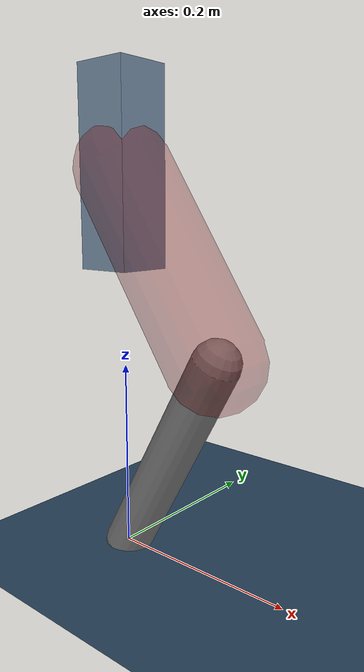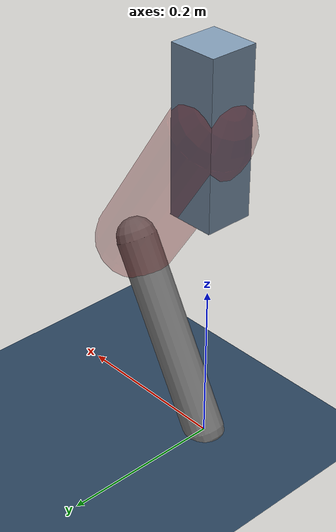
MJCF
<mujoco model="Hopper2D">
	<compiler inertiafromgeom="true" angle="radian" />
	<option timestep="0.001" integrator="implicit" cone="elliptic" solver="Newton" tolerance="1e-10" />

	<default>
		<geom contype="1" conaffinity="1" condim="3" friction="2 0.005 0.0001" solref="0.005 1" />
		<joint limited="true" damping="0.1" />
	</default>

	<asset>
		<texture name="skybox" type="skybox" builtin="gradient" rgb1=".4 .6 .8" rgb2="0 0 0" width="800" height="800" />
		<texture name="grid" type="2d" builtin="checker" rgb1=".1 .2 .3" rgb2=".2 .3 .4" width="300" height="300" mark="edge" markrgb=".2 .3 .4" />
		<material name="ground" texture="grid" texrepeat="1 1" texuniform="true" reflectance="0.1" />
		<material name="leg" rgba="0.5 0.6 0.7 1" />
	</asset>

	<worldbody>

		<geom name="floor" type="plane" size="5 5 0.25" material="ground" />

		<light directional="false" diffuse="0.8 0.8 0.8" specular="0.3 0.3 0.3" pos="0 0 2" dir="0 0 -1" />
		<light mode="targetbodycom" target="base" directional="false" diffuse="0.8 0.8 0.8" specular="0.3 0.3 0.3" pos="0 0 2" dir="0 0 -1" />

		<camera name="fixed" pos="0 -2 1" xyaxes="1 0 0 0 0 1" />
		<camera name="tracking" mode="trackcom" pos="0 -3 1" />

		<body name="root" pos="0 0 0.4028452395610031">
			<joint name="slide_x" type="slide" axis="1 0 0" range="-100 100" />
			<joint name="slide_z" type="slide" axis="0 0 1" range="0 10" />

			<body name="base" pos="0 0 0">
				<geom name="torso" type="box" size="0.03 0.03 0.1" mass="2.883" material="leg" />

				<body name="link1" pos="0 0 0" euler="0 0.987202807084249 0">
					<joint type="hinge" axis="0 -1 0" pos="0 0 0" name="hinge1" limited="true" range="-3.14 3.14" stiffness="0" damping="0.1" />
					<geom name="thigh" type="capsule" fromto="0 0 0 0.21863596095268 0 0" size="0.05" rgba="0.5 0 0 0.3" mass="0.7761899023817" />

					<body name="link2" pos="0.21863596095268 0 0" euler="0 1.0838421943114869 0">
						<joint type="hinge" axis="0 -1 0" pos="0 0 0" name="hinge2" limited="true" range="-3.14 3.14" stiffness="0" damping="0.1" />
						<geom name="shank" type="capsule" fromto="0 0 0 0.25117422930003025 0 0" size="0.025" mass="0.44345680637002727" />

					</body>
				</body>
			</body>
		</body>
	</worldbody>

	<actuator>
		<motor name="torque1" joint="hinge1" ctrlrange="-109.70018199114324 109.70018199114324" ctrllimited="true" gear="1" />
		<motor name="torque2" joint="hinge2" ctrlrange="-42.33377507870947 42.33377507870947" ctrllimited="true" gear="1" />
	</actuator>
</mujoco>
